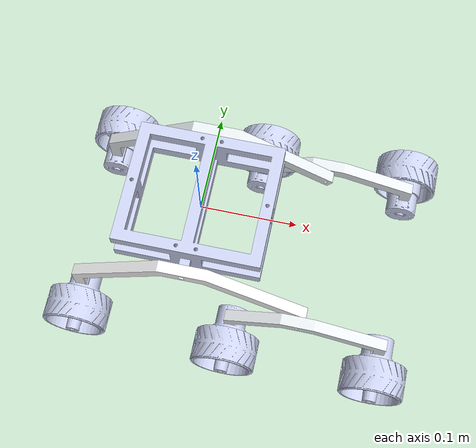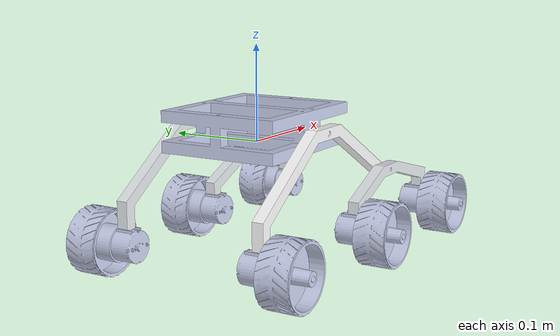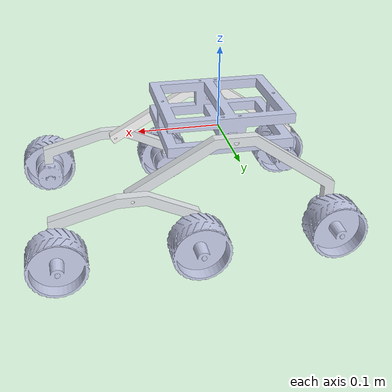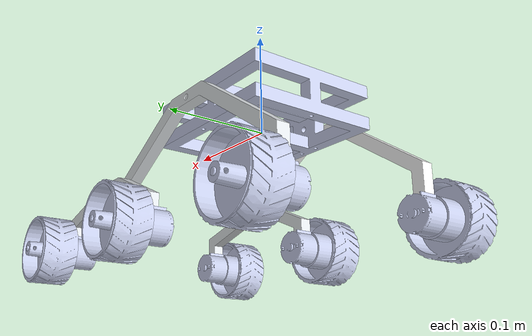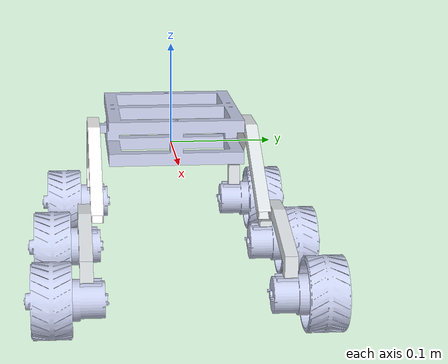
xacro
<?xml version="1.0" encoding="utf-8"?>

<robot name="rover" xmlns:xacro="http://www.ros.org/wiki/xacro">

<!-- Macro for motor -->
<!-- Odd numbered motors are on the left; smallest number being the
front one; similar is the case with even numbered motors being on the
right-->

<xacro:macro name="motors" params="id joint_xyz joint_rpy parent_link">
	<link name="motor_${id}">
    <inertial>
      <origin
        xyz="0.0259342353576591 6.92370754909466E-06 -0.00015898635132551"
        rpy="0 0 0" />
      <mass
        value="0.0144869013671343" />
      <inertia
        ixx="2.93006728406176E-06"
        ixy="-3.84798244093701E-10"
        ixz="8.83603178602292E-09"
        iyy="2.30168032229485E-06"
        iyz="1.57956449905296E-09"
        izz="2.27269808658658E-06" />
    </inertial>
    <visual>
      <origin
        xyz="0 0 0"
        rpy="0 0 0" />
      <geometry>
        <mesh
          filename="package://rover/meshes/motor.STL" />
      </geometry>
      <material
        name="">
        <color
          rgba="0.792156862745098 0.819607843137255 0.933333333333333 1" />
      </material>
    </visual>
    <collision>
      <origin
        xyz="0 0 0"
        rpy="0 0 0" />
      <geometry>
        <mesh
          filename="package://rover/meshes/motor_collision.STL" />
      </geometry>
    </collision>
	</link>

	<joint
		name="motor_${id}_joint"
		type="fixed">
		<origin
		  xyz="${joint_xyz}"
		  rpy="${joint_rpy}" />
		<parent
		  link="${parent_link}" />
		<child
		  link="motor_${id}" />
	</joint>

	<gazebo reference="motor_${id}">
		<material>Gazebo/DarkGrey</material>
    </gazebo>
</xacro:macro>

<!-- Macro for wheels -->
<!-- Odd numbered wheels are on the left; smallest number being the
front one; similar is the case with even numbered wheels being on the
right-->

<xacro:macro name="wheels" params="id joint_xyz joint_rpy">

  <link name="wheel_${id}">
    <inertial>
      <origin
        xyz="0.019283 8.6633E-06 -1.928E-09"
        rpy="0 0 0" />
      <mass
        value="0.033378" />
      <inertia
        ixx="2.841E-05"
        ixy="-4.7026E-09"
        ixz="1.3376E-12"
        iyy="1.7204E-05"
        iyz="6.8395E-13"
        izz="1.7202E-05" />
    </inertial>
    <visual>
      <origin
        xyz="0 0 0"
        rpy="0 0 0" />
      <geometry>
        <mesh
          filename="package://rover/meshes/wheel.STL" />
      </geometry>
      <material
        name="">
        <color
          rgba="0.79216 0.81961 0.93333 1" />
      </material>
    </visual>
    <collision>
      <origin
        xyz="0 0 0"
        rpy="0 0 0" />
      <geometry>
        <mesh
          filename="package://rover/meshes/wheel_collision.STL" />
      </geometry>
    </collision>
  </link>

  <joint
    name="wheel_${id}_joint"
    type="continuous">
    <origin
      xyz="0.028765 0 0"
      rpy="-0.054444 0 0" />
    <parent
      link="motor_${id}" />
    <child
      link="wheel_${id}" />
    <axis
      xyz="1 0 0" />
  </joint>

  <gazebo reference="wheel_${id}">
		<material>Gazebo/Grey</material>
    </gazebo>

   <!-- Transmission -->
   <transmission name="transmitter">
		<type>transmission_interface/SimpleTransmission</type>
		<joint name="wheel_${id}_joint">
		  <hardwareInterface>hardware_interface/VelocityJointInterface</hardwareInterface>
		</joint>
		<actuator name="wheel_actuator">
		  <hardwareInterface>hardware_interface/VelocityJointInterface</hardwareInterface>
		  <mechanicalReduction>1</mechanicalReduction>
		</actuator>
	</transmission>

</xacro:macro>

  <link name="base_link">
    <inertial>
      <origin
        xyz="-2.111E-18 1.5741E-17 0.0155"
        rpy="0 0 0" />
      <mass
        value="0.49112" />
      <inertia
        ixx="0.0010415"
        ixy="5.1756E-20"
        ixz="1.0477E-21"
        iyy="0.0012245"
        iyz="6.8861E-20"
        izz="0.0022536" />
    </inertial>
    <visual>
      <origin
        xyz="0 0 0"
        rpy="0 0 0" />
      <geometry>
        <mesh
          filename="package://rover/meshes/base_link.STL" />
      </geometry>
      <material
        name="">
        <color
          rgba="0.79216 0.81961 0.93333 1" />
      </material>
    </visual>
    <collision>
      <origin
        xyz="0 0 0"
        rpy="0 0 0" />
      <geometry>
        <mesh
          filename="package://rover/meshes/base_link_collision.STL" />
      </geometry>
    </collision>
  </link>

  <gazebo reference="base_link">
	<material>Gazebo/FlatBlack</material>
  </gazebo>

  <link name="left_leg">
    <inertial>
      <origin
        xyz="-0.0110049037090681 -0.0332441365416239 0.00599835461104921"
        rpy="0 0 0" />
      <mass
        value="0.0359381970215988" />
      <inertia
        ixx="2.2688382854995E-05"
        ixy="-2.10643901201987E-05"
        ixz="7.62089263997965E-09"
        iyy="0.000207801306021132"
        iyz="-1.53877494070991E-09"
        izz="0.000229033040658336" />
    </inertial>
    <visual>
      <origin
        xyz="0 0 0"
        rpy="0 0 0" />
      <geometry>
        <mesh
          filename="package://rover/meshes/left_leg.STL" />
      </geometry>
      <material
        name="">
        <color
          rgba="0.898039215686275 0.917647058823529 0.929411764705882 1" />
      </material>
    </visual>
    <collision>
      <origin
        xyz="0 0 0"
        rpy="0 0 0" />
      <geometry>
        <mesh
          filename="package://rover/meshes/left_leg.STL" />
      </geometry>
    </collision>
  </link>

  <joint
    name="left_leg_joint"
    type="fixed">
    <origin
      xyz="0.0029222 0.08418 0.018288"
      rpy="1.5708 0 0" />
    <parent
      link="base_link" />
    <child
      link="left_leg" />
    <axis
      xyz="0 0 0" />
  </joint>

  <gazebo reference="left_leg">
	<material>Gazebo/Blue</material>
   </gazebo>

  <link name="left_sub_leg">
    <inertial>
      <origin
        xyz="0.0103494541694386 -0.0113370216313985 -0.00600777793482314"
        rpy="0 0 0" />
      <mass
        value="0.0230678067855023" />
      <inertia
        ixx="2.97892069005275E-06"
        ixy="-3.78936868364967E-08"
        ixz="1.41396587426279E-08"
        iyy="6.50250833265965E-05"
        iyz="-3.35662430222893E-09"
        izz="6.70643757661505E-05" />
    </inertial>
    <visual>
      <origin
        xyz="0 0 0"
        rpy="0 0 0" />
      <geometry>
        <mesh
          filename="package://rover/meshes/left_sub_leg.STL" />
      </geometry>
      <material
        name="">
        <color
          rgba="0.898039215686275 0.917647058823529 0.929411764705882 1" />
      </material>
    </visual>
    <collision>
      <origin
        xyz="0 0 0"
        rpy="0 0 0" />
      <geometry>
        <mesh
          filename="package://rover/meshes/left_sub_leg.STL" />
      </geometry>
    </collision>
  </link>

  <gazebo reference="left_sub_leg">
	<material>Gazebo/Red</material>
   </gazebo>

  <joint
    name="left_sub_leg_joint"
    type="revolute">
    <origin
      xyz="0.11752 -0.058986 0"
      rpy="0 0 0" />
    <parent
      link="left_leg" />
    <child
      link="left_sub_leg" />
    <axis
      xyz="0 0 1" />
    <limit
      lower="-1.5708"
      upper="1.5708"
      effort="50"
      velocity="100" />
  </joint>

   <link name="right_leg">
    <inertial>
      <origin
        xyz="0 0 0"
        rpy="0 0 0" />
      <mass
        value="0" />
      <inertia
        ixx="0"
        ixy="0"
        ixz="0"
        iyy="0"
        iyz="0"
        izz="0" />
    </inertial>
    <visual>
      <origin
        xyz="0 0 0"
        rpy="0 0 0" />
      <geometry>
        <mesh
          filename="package://rover/meshes/right_leg.STL" />
      </geometry>
      <material
        name="">
        <color
          rgba="1 1 1 1" />
      </material>
    </visual>
    <collision>
      <origin
        xyz="0 0 0"
        rpy="0 0 0" />
      <geometry>
        <mesh
          filename="package://rover/meshes/right_leg.STL" />
      </geometry>
    </collision>
  </link>

   <joint
    name="right_leg_joint"
    type="fixed">
    <origin
      xyz="0.0029222 -0.07218 0.018288"
      rpy="1.5708 0 0" />
    <parent
      link="base_link" />
    <child
      link="right_leg" />
    <axis
      xyz="0 0 0" />
  </joint>

   <gazebo reference="right_leg">
	<material>Gazebo/Blue</material>
   </gazebo>

  <link name="right_sub_leg">
    <inertial>
      <origin
        xyz="0.0103494541694387 -0.0113370216313985 0.00599222206517686"
        rpy="0 0 0" />
      <mass
        value="0.0230678067855023" />
      <inertia
        ixx="2.97892069005275E-06"
        ixy="-3.7893686836509E-08"
        ixz="1.41396587426269E-08"
        iyy="6.50250833265963E-05"
        iyz="-3.35662430222885E-09"
        izz="6.70643757661504E-05" />
    </inertial>
    <visual>
      <origin
        xyz="0 0 0"
        rpy="0 0 0" />
      <geometry>
        <mesh
          filename="package://rover/meshes/right_sub_leg.STL" />
      </geometry>
      <material
        name="">
        <color
          rgba="0.898039215686275 0.917647058823529 0.929411764705882 1" />
      </material>
    </visual>
    <collision>
      <origin
        xyz="0 0 0"
        rpy="0 0 0" />
      <geometry>
        <mesh
          filename="package://rover/meshes/right_sub_leg.STL" />
      </geometry>
    </collision>
  </link>

  <joint
    name="right_sub_leg_joint"
    type="revolute">
    <origin
      xyz="0.11752 -0.058986 0.012"
      rpy="0 0 0" />
    <parent
      link="right_leg" />
    <child
      link="right_sub_leg" />
    <axis
      xyz="0 0 1" />
    <limit
      lower="-1.5708"
      upper="1.5708"
      effort="50"
      velocity="100" />
  </joint>

  <gazebo reference="right_sub_leg">
	<material>Gazebo/Red</material>
   </gazebo>

  <xacro:motors id="1" joint_xyz="0.089107 -0.05213 0.01" joint_rpy="1.5708 1.5708 0" parent_link="left_sub_leg"/>
  <xacro:motors id="3" joint_xyz="-0.071293 -0.05213 0.01" joint_rpy="1.5708 1.5708 0" parent_link="left_sub_leg"/>
  <xacro:motors id="5" joint_xyz="-0.12025 -0.11112 0.021" joint_rpy="1.5708 1.5708 0" parent_link="left_leg"/>
  <xacro:motors id="2" joint_xyz="0.089107 -0.05213 -0.01" joint_rpy="1.5708 -1.5708 0" parent_link="right_sub_leg"/>
  <xacro:motors id="4" joint_xyz="-0.071293 -0.05213 -0.01" joint_rpy="1.5708 -1.5708 0" parent_link="right_sub_leg"/>
  <xacro:motors id="6" joint_xyz="-0.12025 -0.11112 -0.01" joint_rpy="1.5708 -1.5708 0" parent_link="right_leg"/>

  <xacro:wheels id="1" joint_xyz="0.028765 0 0" joint_rpy="-0.054 0 0"/>
  <xacro:wheels id="3" joint_xyz="0.028765 0 0" joint_rpy="-0.054 0 0"/>
  <xacro:wheels id="5" joint_xyz="0.028765 0 0" joint_rpy="-0.054 0 0"/>
  <xacro:wheels id="2" joint_xyz="0.028765 0 0" joint_rpy="0.054 0 0"/>
  <xacro:wheels id="4" joint_xyz="0.028765 0 0" joint_rpy="0.054 0 0"/>
  <xacro:wheels id="6" joint_xyz="0.028765 0 0" joint_rpy="0.054 0 0"/>

  <gazebo>
      <plugin name="gazebo_ros_control" filename="libgazebo_ros_control.so">
		  <robotNamespace>/rover</robotNamespace>
      </plugin>
  </gazebo>

</robot>
